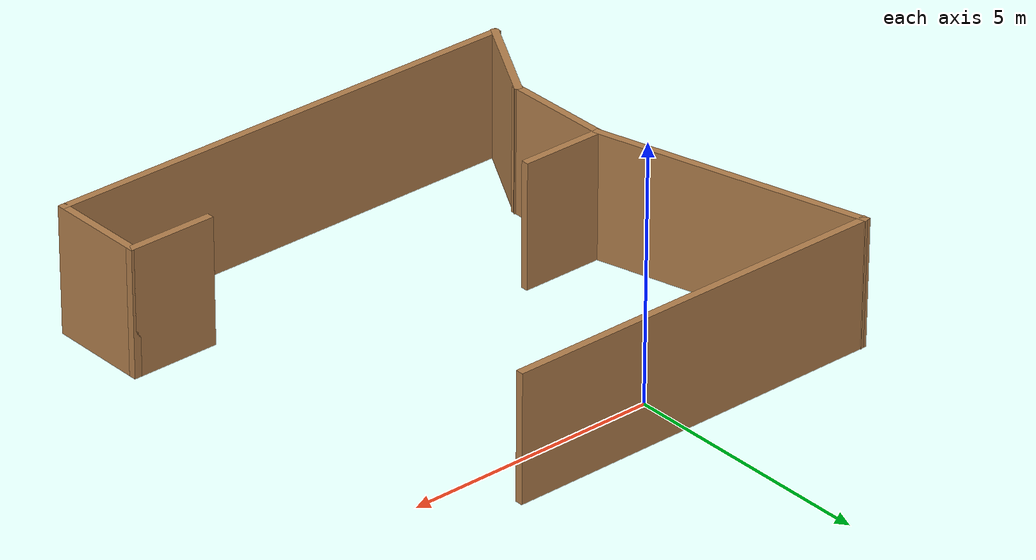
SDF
<?xml version='1.0'?>
<sdf version='1.7'>
  <model name='worlv2'>
    <pose>0.91657 -3.56514 0 0 -0 0</pose>
    <link name='Wall_1'>
      <collision name='Wall_1_Collision'>
        <geometry>
          <box>
            <size>5.5 0.15 2.5</size>
          </box>
        </geometry>
        <pose>0 0 1.25 0 -0 0</pose>
      </collision>
      <visual name='Wall_1_Visual'>
        <pose>0 0 1.25 0 -0 0</pose>
        <geometry>
          <box>
            <size>5.5 0.15 2.5</size>
          </box>
        </geometry>
        <material>
          <script>
            <uri>file://media/materials/scripts/gazebo.material</uri>
            <name>Gazebo/Wood</name>
          </script>
          <ambient>1 1 1 1</ambient>
        </material>
        <meta>
          <layer>0</layer>
        </meta>
      </visual>
      <pose>-4.26657 1.96463 0 0 -0 -1.309</pose>
    </link>
    <link name='Wall_11'>
      <collision name='Wall_11_Collision'>
        <geometry>
          <box>
            <size>7.75 0.15 2.5</size>
          </box>
        </geometry>
        <pose>0 0 1.25 0 -0 0</pose>
      </collision>
      <visual name='Wall_11_Visual'>
        <pose>0 0 1.25 0 -0 0</pose>
        <geometry>
          <box>
            <size>7.75 0.15 2.5</size>
          </box>
        </geometry>
        <material>
          <script>
            <uri>file://media/materials/scripts/gazebo.material</uri>
            <name>Gazebo/Wood</name>
          </script>
          <ambient>1 1 1 1</ambient>
        </material>
        <meta>
          <layer>0</layer>
        </meta>
      </visual>
      <pose>-1.15891 4.54848 0 0 -0 0</pose>
    </link>
    <link name='Wall_2'>
      <collision name='Wall_2_Collision'>
        <geometry>
          <box>
            <size>1.75 0.15 2.5</size>
          </box>
        </geometry>
        <pose>0 0 1.25 0 -0 0</pose>
      </collision>
      <visual name='Wall_2_Visual'>
        <pose>0 0 1.25 0 -0 0</pose>
        <geometry>
          <box>
            <size>1.75 0.15 2.5</size>
          </box>
        </geometry>
        <material>
          <script>
            <uri>file://media/materials/scripts/gazebo.material</uri>
            <name>Gazebo/Wood</name>
          </script>
          <ambient>1 1 1 1</ambient>
        </material>
        <meta>
          <layer>0</layer>
        </meta>
      </visual>
      <pose>-2.77423 -0.619227 0 0 -0 0</pose>
    </link>
    <link name='Wall_4'>
      <collision name='Wall_4_Collision'>
        <geometry>
          <box>
            <size>2.25 0.15 2.5</size>
          </box>
        </geometry>
        <pose>0 0 1.25 0 -0 0</pose>
      </collision>
      <visual name='Wall_4_Visual'>
        <pose>0 0 1.25 0 -0 0</pose>
        <geometry>
          <box>
            <size>2.25 0.15 2.5</size>
          </box>
        </geometry>
        <material>
          <script>
            <uri>file://media/materials/scripts/gazebo.material</uri>
            <name>Gazebo/Wood</name>
          </script>
          <ambient>1 1 1 1</ambient>
        </material>
        <meta>
          <layer>0</layer>
        </meta>
      </visual>
      <pose>-3.57423 -1.66923 0 0 -0 -1.5708</pose>
    </link>
    <link name='Wall_6'>
      <collision name='Wall_6_Collision'>
        <geometry>
          <box>
            <size>2.25 0.15 2.5</size>
          </box>
        </geometry>
        <pose>0 0 1.25 0 -0 0</pose>
      </collision>
      <visual name='Wall_6_Visual'>
        <pose>0 0 1.25 0 -0 0</pose>
        <geometry>
          <box>
            <size>2.25 0.15 2.5</size>
          </box>
        </geometry>
        <material>
          <script>
            <uri>file://media/materials/scripts/gazebo.material</uri>
            <name>Gazebo/Wood</name>
          </script>
          <ambient>1 1 1 1</ambient>
        </material>
        <meta>
          <layer>0</layer>
        </meta>
      </visual>
      <pose>-4.09923 -3.62855 0 0 -0 -2.0944</pose>
    </link>
    <link name='Wall_7'>
      <collision name='Wall_7_Collision'>
        <geometry>
          <box>
            <size>9.75 0.15 2.5</size>
          </box>
        </geometry>
        <pose>0 0 1.25 0 -0 0</pose>
      </collision>
      <visual name='Wall_7_Visual'>
        <pose>0 0 1.25 0 -0 0</pose>
        <geometry>
          <box>
            <size>9.75 0.15 2.5</size>
          </box>
        </geometry>
        <material>
          <script>
            <uri>file://media/materials/scripts/gazebo.material</uri>
            <name>Gazebo/Wood</name>
          </script>
          <ambient>1 1 1 1</ambient>
        </material>
        <meta>
          <layer>0</layer>
        </meta>
      </visual>
      <pose>0.175769 -4.53788 0 0 -0 0</pose>
    </link>
    <link name='Wall_8'>
      <collision name='Wall_8_Collision'>
        <geometry>
          <box>
            <size>2 0.15 2.5</size>
          </box>
        </geometry>
        <pose>0 0 1.25 0 -0 0</pose>
      </collision>
      <visual name='Wall_8_Visual'>
        <pose>0 0 1.25 0 -0 0</pose>
        <geometry>
          <box>
            <size>2 0.15 2.5</size>
          </box>
        </geometry>
        <material>
          <script>
            <uri>file://media/materials/scripts/gazebo.material</uri>
            <name>Gazebo/Wood</name>
          </script>
          <ambient>1 1 1 1</ambient>
        </material>
        <meta>
          <layer>0</layer>
        </meta>
      </visual>
      <pose>4.97577 -3.61288 0 0 -0 1.5708</pose>
    </link>
    <link name='Wall_9'>
      <collision name='Wall_9_Collision'>
        <geometry>
          <box>
            <size>1.75 0.15 2.5</size>
          </box>
        </geometry>
        <pose>0 0 1.25 0 -0 0</pose>
      </collision>
      <visual name='Wall_9_Visual'>
        <pose>0 0 1.25 0 -0 0</pose>
        <geometry>
          <box>
            <size>1.75 0.15 2.5</size>
          </box>
        </geometry>
        <material>
          <script>
            <uri>file://media/materials/scripts/gazebo.material</uri>
            <name>Gazebo/Wood</name>
          </script>
          <ambient>1 1 1 1</ambient>
        </material>
        <meta>
          <layer>0</layer>
        </meta>
      </visual>
      <pose>4.17577 -2.68788 0 0 -0 3.14159</pose>
    </link>
    <static>1</static>
  </model>
</sdf>
